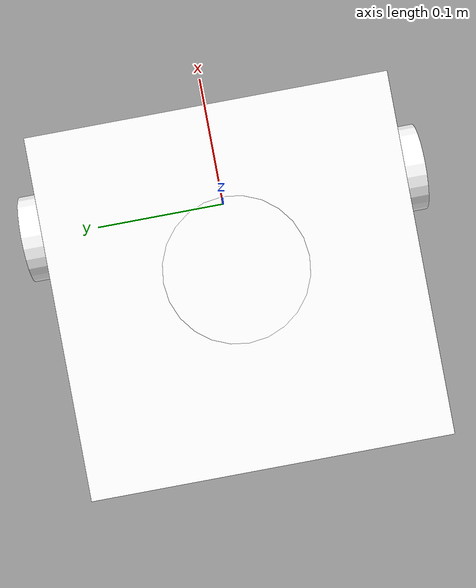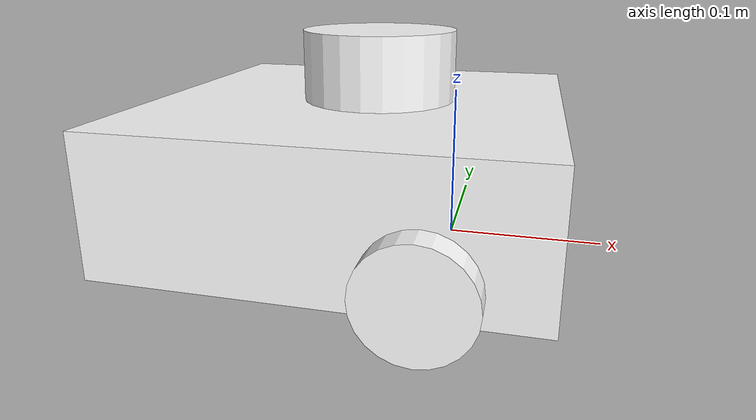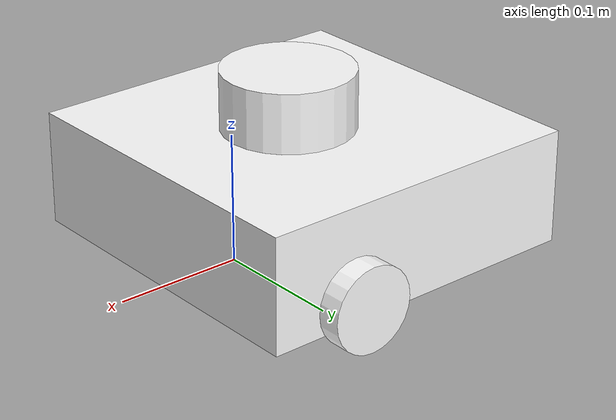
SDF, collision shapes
<?xml version="1.0" ?>
<sdf version="1.5">
  <model name="turtlebot3_waffle">
    <pose>0.0 0.0 0.0 0.0 0.0 0.0</pose>

    <link name="base_footprint"/>

    <link name="base_link">

      <inertial>
        <pose>-0.064 0 0.048 0 0 0</pose>
        <inertia>
          <ixx>4.2111447e-02</ixx>
          <ixy>0</ixy>
          <ixz>0</ixz>
          <iyy>4.2111447e-02</iyy>
          <iyz>0</iyz>
          <izz>7.5254874e-02</izz>
        </inertia>
        <mass>1.3729096e+00</mass>
      </inertial>

      <collision name="base_collision">
        <pose>-0.064 0 0.048 0 0 0</pose>
        <geometry>
          <box>
            <size>0.265 0.265 0.089</size>
          </box>
        </geometry>
      </collision>

      <visual name="base_visual">
        <pose>-0.064 0 0 0 0 0</pose>
        <geometry>
          <mesh>
            <uri>model://turtlebot3_common/meshes/waffle_base.dae</uri>
            <scale>0.001 0.001 0.001</scale>
          </mesh>
        </geometry>
        <material>
          <ambient>1 1 1 1</ambient>
          <diffuse>1 1 1 1</diffuse>
          <specular>0.2 0.2 0.2 1</specular>
          <emissive>0 0 0 1</emissive>
        </material>
      </visual>
    </link>

    <link name="imu_link">
      <sensor name="tb3_imu" type="imu">
        <always_on>true</always_on>
        <update_rate>200</update_rate>
        <topic>turtlebot3/imu</topic>
        <imu>
          <angular_velocity>
            <x>
              <noise type="gaussian">
                <mean>0.0</mean>
                <stddev>2e-4</stddev>
              </noise>
            </x>
            <y>
              <noise type="gaussian">
                <mean>0.0</mean>
                <stddev>2e-4</stddev>
              </noise>
            </y>
            <z>
              <noise type="gaussian">
                <mean>0.0</mean>
                <stddev>2e-4</stddev>
              </noise>
            </z>
          </angular_velocity>
          <linear_acceleration>
            <x>
              <noise type="gaussian">
                <mean>0.0</mean>
                <stddev>1.7e-2</stddev>
              </noise>
            </x>
            <y>
              <noise type="gaussian">
                <mean>0.0</mean>
                <stddev>1.7e-2</stddev>
              </noise>
            </y>
            <z>
              <noise type="gaussian">
                <mean>0.0</mean>
                <stddev>1.7e-2</stddev>
              </noise>
            </z>
          </linear_acceleration>
        </imu>
      </sensor>
    </link>

    <link name="base_scan">
      <inertial>
        <pose>-0.052 0 0.111 0 0 0</pose>
        <inertia>
          <ixx>0.001</ixx>
          <ixy>0.000</ixy>
          <ixz>0.000</ixz>
          <iyy>0.001</iyy>
          <iyz>0.000</iyz>
          <izz>0.001</izz>
        </inertia>
        <mass>0.114</mass>
      </inertial>

      <collision name="lidar_sensor_collision">
        <pose>-0.052 0 0.111 0 0 0</pose>
        <geometry>
          <cylinder>
            <radius>0.0508</radius>
            <length>0.055</length>
          </cylinder>
        </geometry>
      </collision>

      <visual name="lidar_sensor_visual">
        <pose>-0.064 0 0.121 0 0 0</pose>
        <geometry>
          <mesh>
            <uri>model://turtlebot3_common/meshes/lds.dae</uri>
            <scale>0.001 0.001 0.001</scale>
          </mesh>
        </geometry>
        <material>
          <ambient>1 1 1 1</ambient>
          <diffuse>1 1 1 1</diffuse>
          <specular>0.2 0.2 0.2 1</specular>
          <emissive>0 0 0 1</emissive>
        </material>
      </visual>

      <sensor name="hls_lfcd_lds" type="gpu_lidar">
        <always_on>true</always_on>
        <visualize>true</visualize>
        <pose>-0.064 0 0.121 0 0 0</pose>
        <update_rate>5</update_rate>
        <topic>turtlebot3/laser/scan</topic>
        <gz_frame_id>base_scan</gz_frame_id>
        <lidar>
          <scan>
            <horizontal>
              <samples>360</samples>
              <resolution>1.000000</resolution>
              <min_angle>0.000000</min_angle>
              <max_angle>6.280000</max_angle>
            </horizontal>
          </scan>
          <range>
            <min>0.20000</min>
            <max>3.5</max>
            <resolution>0.015000</resolution>
          </range>
        </lidar>
      </sensor>
    </link>

    <link name="wheel_left_link">

      <inertial>
        <pose>0.0 0.144 0.023 -1.57 0 0</pose>
        <inertia>
          <ixx>1.1175580e-05</ixx>
          <ixy>-4.2369783e-11</ixy>
          <ixz>-5.9381719e-09</ixz>
          <iyy>1.1192413e-05</iyy>
          <iyz>-1.4400107e-11</iyz>
          <izz>2.0712558e-05</izz>
        </inertia>
        <mass>0.1</mass>
      </inertial>

      <collision name="wheel_left_collision">
        <pose>0.0 0.144 0.023 -1.57 0 0</pose>
        <geometry>
          <cylinder>
            <radius>0.033</radius>
            <length>0.018</length>
          </cylinder>
        </geometry>
        <surface>
          <!-- This friction pamareter don't contain reliable data!! -->
          <friction>
            <ode>
              <mu>100000.0</mu>
              <mu2>100000.0</mu2>
              <fdir1>0 0 0</fdir1>
              <slip1>0.0</slip1>
              <slip2>0.0</slip2>
            </ode>
          </friction>
          <contact>
            <ode>
              <soft_cfm>0</soft_cfm>
              <soft_erp>0.2</soft_erp>
              <kp>1e+5</kp>
              <kd>1</kd>
              <max_vel>0.01</max_vel>
              <min_depth>0.001</min_depth>
            </ode>
          </contact>
        </surface>
      </collision>

      <visual name="wheel_left_visual">
        <pose>0.0 0.144 0.023 0 0 0</pose>
        <geometry>
          <mesh>
            <uri>model://turtlebot3_common/meshes/tire.dae</uri>
            <scale>0.001 0.001 0.001</scale>
          </mesh>
        </geometry>
        <material>
          <ambient>1 1 1 1</ambient>
          <diffuse>1 1 1 1</diffuse>
          <specular>0.2 0.2 0.2 1</specular>
          <emissive>0 0 0 1</emissive>
        </material>
      </visual>
    </link>

    <link name="wheel_right_link">

      <inertial>
        <pose>0.0 -0.144 0.023 -1.57 0 0</pose>
        <inertia>
          <ixx>1.1175580e-05</ixx>
          <ixy>-4.2369783e-11</ixy>
          <ixz>-5.9381719e-09</ixz>
          <iyy>1.1192413e-05</iyy>
          <iyz>-1.4400107e-11</iyz>
          <izz>2.0712558e-05</izz>
        </inertia>
        <mass>0.1</mass>
      </inertial>

      <collision name="wheel_right_collision">
        <pose>0.0 -0.144 0.023 -1.57 0 0</pose>
        <geometry>
          <cylinder>
            <radius>0.033</radius>
            <length>0.018</length>
          </cylinder>
        </geometry>
        <surface>
          <!-- This friction pamareter don't contain reliable data!! -->
          <friction>
            <ode>
              <mu>100000.0</mu>
              <mu2>100000.0</mu2>
              <fdir1>0 0 0</fdir1>
              <slip1>0.0</slip1>
              <slip2>0.0</slip2>
            </ode>
          </friction>
          <contact>
            <ode>
              <soft_cfm>0</soft_cfm>
              <soft_erp>0.2</soft_erp>
              <kp>1e+5</kp>
              <kd>1</kd>
              <max_vel>0.01</max_vel>
              <min_depth>0.001</min_depth>
            </ode>
          </contact>
        </surface>
      </collision>

      <visual name="wheel_right_visual">
        <pose>0.0 -0.144 0.023 0 0 0</pose>
        <geometry>
          <mesh>
            <uri>model://turtlebot3_common/meshes/tire.dae</uri>
            <scale>0.001 0.001 0.001</scale>
          </mesh>
        </geometry>
        <material>
          <ambient>1 1 1 1</ambient>
          <diffuse>1 1 1 1</diffuse>
          <specular>0.2 0.2 0.2 1</specular>
          <emissive>0 0 0 1</emissive>
        </material>
      </visual>
    </link>

    <link name='caster_back_right_link'>
      <pose>-0.177 -0.064 -0.004 -1.57 0 0</pose>
      <inertial>
        <mass>0.001</mass>
        <inertia>
          <ixx>0.00001</ixx>
          <ixy>0.000</ixy>
          <ixz>0.000</ixz>
          <iyy>0.00001</iyy>
          <iyz>0.000</iyz>
          <izz>0.00001</izz>
        </inertia>
      </inertial>
      <collision name='collision'>
        <geometry>
          <sphere>
            <radius>0.005000</radius>
          </sphere>
        </geometry>
        <surface>
          <contact>
            <ode>
              <soft_cfm>0</soft_cfm>
              <soft_erp>0.2</soft_erp>
              <kp>1e+5</kp>
              <kd>1</kd>
              <max_vel>0.01</max_vel>
              <min_depth>0.001</min_depth>
            </ode>
          </contact>
        </surface>
      </collision>
    </link>

    <link name='caster_back_left_link'>
      <pose>-0.177 0.064 -0.004 -1.57 0 0</pose>
      <inertial>
        <mass>0.001</mass>
        <inertia>
          <ixx>0.00001</ixx>
          <ixy>0.000</ixy>
          <ixz>0.000</ixz>
          <iyy>0.00001</iyy>
          <iyz>0.000</iyz>
          <izz>0.00001</izz>
        </inertia>
      </inertial>
      <collision name='collision'>
        <geometry>
          <sphere>
            <radius>0.005000</radius>
          </sphere>
        </geometry>
        <surface>
          <contact>
            <ode>
              <soft_cfm>0</soft_cfm>
              <soft_erp>0.2</soft_erp>
              <kp>1e+5</kp>
              <kd>1</kd>
              <max_vel>0.01</max_vel>
              <min_depth>0.001</min_depth>
            </ode>
          </contact>
        </surface>
      </collision>
    </link>

    <link name="camera_link"/>

    <link name="camera_rgb_frame">
      <inertial>
        <pose>0.069 -0.047 0.107 0 0 0</pose>
        <inertia>
          <ixx>0.001</ixx>
          <ixy>0.000</ixy>
          <ixz>0.000</ixz>
          <iyy>0.001</iyy>
          <iyz>0.000</iyz>
          <izz>0.001</izz>
        </inertia>
        <mass>0.035</mass>
      </inertial>

      <pose>0.069 -0.047 0.107 0 0 0</pose>
      <sensor name="camera" type="camera">
        <always_on>true</always_on>
        <visualize>true</visualize>
        <update_rate>30</update_rate>
        <topic>turtlebot3/camera/image_raw</topic>
        <gz_frame_id>camera_rgb_frame</gz_frame_id>
        <camera name="intel_realsense_r200">
          <camera_info_topic>turtlebot3/camera/camera_info</camera_info_topic>
          <horizontal_fov>1.02974</horizontal_fov>
          <image>
            <width>1920</width>
            <height>1080</height>
            <format>R8G8B8</format>
          </image>
          <clip>
            <near>0.02</near>
            <far>300</far>
          </clip>
          <noise>
            <type>gaussian</type>
            <mean>0.0</mean>
            <stddev>0.007</stddev>
          </noise>
        </camera>
      </sensor>
    </link>

    <link name="camera_depth_frame">
      <inertial>
        <pose>0.069 -0.047 0.107 0 0 0</pose>
        <inertia>
          <ixx>0.001</ixx>
          <ixy>0.000</ixy>
          <ixz>0.000</ixz>
          <iyy>0.001</iyy>
          <iyz>0.000</iyz>
          <izz>0.001</izz>
        </inertia>
        <mass>0.035</mass>
      </inertial>

      <pose>0.069 -0.047 0.107 0 0 0</pose>
      <sensor name="camera_ir" type="depth_camera">
        <always_on>true</always_on>
        <visualize>true</visualize>
        <update_rate>10</update_rate>
        <topic>turtlebot3/camera/depth</topic>
        <gz_frame_id>camera_depth_frame</gz_frame_id>
        <camera>
          <camera_info_topic>turtlebot3/camera/camera_info</camera_info_topic>
          <horizontal_fov>1.02974</horizontal_fov>
          <image>
            <width>1920</width>
            <height>1020</height>
            <format>R_FLOAT32</format>
          </image>
          <clip>
            <near>0.1</near>
            <far>300.0</far>
          </clip>
        </camera>
      </sensor>
    </link>

    <joint name="base_joint" type="fixed">
      <parent>base_footprint</parent>
      <child>base_link</child>
      <pose>0.0 0.0 0.010 0 0 0</pose>
    </joint>

    <joint name="wheel_left_joint" type="revolute">
      <parent>base_link</parent>
      <child>wheel_left_link</child>
      <pose>0.0 0.144 0.023 -1.57 0 0</pose>
      <axis>
        <xyz>0 0 1</xyz>
        <limit>
          <effort>20</effort>
        </limit>
      </axis>
    </joint>

    <joint name="wheel_right_joint" type="revolute">
      <parent>base_link</parent>
      <child>wheel_right_link</child>
      <pose>0.0 -0.144 0.023 -1.57 0 0</pose>
      <axis>
        <xyz>0 0 1</xyz>
        <limit>
          <effort>20</effort>
        </limit>
      </axis>
    </joint>

    <joint name='caster_back_right_joint' type='ball'>
      <parent>base_link</parent>
      <child>caster_back_right_link</child>
    </joint>

    <joint name='caster_back_left_joint' type='ball'>
      <parent>base_link</parent>
      <child>caster_back_left_link</child>
    </joint>

    <joint name="imu_joint" type="fixed">
      <parent>base_link</parent>
      <child>imu_link</child>
      <pose>-0.032 0 0.068 0 0 0</pose>
      <axis>
        <xyz>0 0 1</xyz>
      </axis>
    </joint>

    <joint name="lidar_joint" type="fixed">
      <parent>base_link</parent>
      <child>base_scan</child>
      <pose>-0.064 0 0.121 0 0 0</pose>
      <axis>
        <xyz>0 0 1</xyz>
      </axis>
    </joint>

    <joint name="camera_joint" type="fixed">
      <parent>base_link</parent>
      <child>camera_link</child>
      <pose>0.064 -0.065 0.094 0 0 0</pose>
      <axis>
        <xyz>0 0 1</xyz>
      </axis>
    </joint>

    <joint name="camera_rgb_joint" type="fixed">
      <parent>camera_link</parent>
      <child>camera_rgb_frame</child>
      <pose>0.005 0.018 0.013 0 0 0</pose>
      <axis>
        <xyz>0 0 1</xyz>
      </axis>
    </joint>

    <joint name="camera_depth_joint" type="fixed">
      <parent>camera_link</parent>
      <child>camera_depth_frame</child>
      <pose>0.005 0.018 0.013 0 0 0</pose>
      <axis>
        <xyz>0 0 1</xyz>
      </axis>
    </joint>

    <plugin filename="gz-sim-diff-drive-system" name="gz::sim::systems::DiffDrive">
      <!-- wheels -->
      <left_joint>wheel_left_joint</left_joint>
      <right_joint>wheel_right_joint</right_joint>

      <!-- kinematics -->
      <wheel_separation>0.287</wheel_separation>
      <wheel_radius>0.033</wheel_radius>

      <!-- limits -->
      <max_linear_acceleration>1.0</max_linear_acceleration>

      <topic>turtlebot3/cmd_vel</topic>

      <frame_id>odom</frame_id>
      <odom_publisher_frequency>30</odom_publisher_frequency>
      <child_frame_id>base_footprint</child_frame_id>

    </plugin>

    <plugin filename="gz-sim-odometry-publisher-system" name="gz::sim::systems::OdometryPublisher">
      <odom_topic>turtlebot3/odom</odom_topic>
      <robot_base_frame>base_footprint</robot_base_frame>
      <odom_frame>odom</odom_frame>
      <odom_publish_frequency>50</odom_publish_frequency>
      <dimensions>3</dimensions>

    </plugin>

    <plugin filename="libNoisyOdometryPlugin.so" name="custom_plugins::NoisyOdometryPlugin">
      <ros_topic>/turtlebot3/odom_noisy</ros_topic>
      <frame_id>odom</frame_id>
      <child_frame_id>base_footprint</child_frame_id>

      <!-- must match the DiffDrive plugin values above -->
      <left_joint>wheel_left_joint</left_joint>
      <right_joint>wheel_right_joint</right_joint>
      <wheel_radius>0.033</wheel_radius>
      <wheel_separation>0.287</wheel_separation>

      <alpha1>0.5</alpha1>
      <alpha2>0.5</alpha2>
      <alpha3>0.25</alpha3>
      <alpha4>0.25</alpha4>
    </plugin>

  </model>

</sdf>
